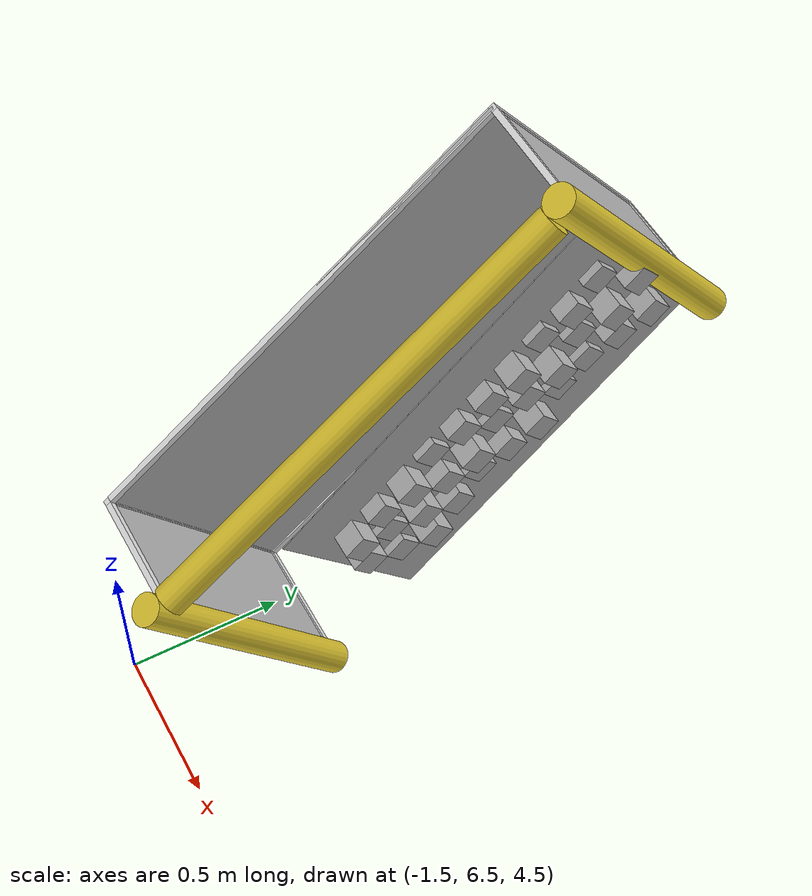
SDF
<sdf version="1.4">
 <world name="default">
  <model name="ground_plane">
   <static>1</static>
   <link name="link">
    <collision name="collision">
     <geometry><plane><normal>0 0 1</normal><size>100 100</size></plane></geometry>
     <surface><friction><ode><mu>100</mu><mu2>50</mu2></ode></friction></surface>
    </collision>
    <visual name="visual">
     <cast_shadows>0</cast_shadows>
     <geometry><plane><normal>0 0 1</normal><size>100 100</size></plane></geometry>
     <material>
      <script><uri>file://media/materials/scripts/gazebo.material</uri><name>Gazebo/Grey</name></script>
     </material>
    </visual>
    <velocity_decay><linear>0</linear><angular>0</angular></velocity_decay>
   </link>
  </model>
  <model name="RoboCup 2014 SPL Goal">
   <static>1</static>
   <link name="left_post">
    <pose>0 0.8 0.45 0 -0 0</pose>
    <collision name="collision">
     <geometry><cylinder><radius>0.05</radius><length>0.9</length></cylinder></geometry>
    </collision>
    <visual name="visual">
     <geometry><cylinder><radius>0.05</radius><length>0.9</length></cylinder></geometry>
     <material>
      <script><uri>file://media/materials/scripts/gazebo.material</uri><name>Gazebo/ZincYellow</name></script>
     </material>
    </visual>
    <velocity_decay><linear>0</linear><angular>0</angular></velocity_decay>
   </link>
   <link name="left_support_horiz_lower">
    <pose>0.24 0.8 0.01 0 -0 0</pose>
    <collision name="collision"><geometry><box><size>0.38 0.02 0.02</size></box></geometry></collision>
    <visual name="visual">
     <geometry><box><size>0.38 0.02 0.02</size></box></geometry>
     <material>
      <script><uri>file://media/materials/scripts/gazebo.material</uri><name>Gazebo/White</name></script>
     </material>
    </visual>
    <velocity_decay><linear>0</linear><angular>0</angular></velocity_decay>
   </link>
   <link name="left_support_horiz_upper">
    <pose>0.24 0.8 0.79 0 -0 0</pose>
    <collision name="collision"><geometry><box><size>0.38 0.02 0.02</size></box></geometry></collision>
    <visual name="visual">
     <geometry><box><size>0.38 0.02 0.02</size></box></geometry>
     <material>
      <script><uri>file://media/materials/scripts/gazebo.material</uri><name>Gazebo/White</name></script>
     </material>
    </visual>
    <velocity_decay><linear>0</linear><angular>0</angular></velocity_decay>
   </link>
   <link name="left_support_vertical">
    <pose>0.44 0.8 0.4 3.14159 1.57079 3.14159</pose>
    <collision name="collision"><geometry><box><size>0.8 0.02 0.02</size></box></geometry></collision>
    <visual name="visual">
     <geometry><box><size>0.8 0.02 0.02</size></box></geometry>
     <material>
      <script><uri>file://media/materials/scripts/gazebo.material</uri><name>Gazebo/White</name></script>
     </material>
    </visual>
    <velocity_decay><linear>0</linear><angular>0</angular></velocity_decay>
   </link>
   <link name="right_support_horiz_lower">
    <pose>0.24 -0.8 0.01 0 -0 0</pose>
    <collision name="collision"><geometry><box><size>0.38 0.02 0.02</size></box></geometry></collision>
    <visual name="visual">
     <geometry><box><size>0.38 0.02 0.02</size></box></geometry>
     <material>
      <script><uri>file://media/materials/scripts/gazebo.material</uri><name>Gazebo/White</name></script>
     </material>
    </visual>
    <velocity_decay><linear>0</linear><angular>0</angular></velocity_decay>
   </link>
   <link name="right_support_horiz_upper">
    <pose>0.24 -0.8 0.79 0 -0 0</pose>
    <collision name="collision"><geometry><box><size>0.38 0.02 0.02</size></box></geometry></collision>
    <visual name="visual">
     <geometry><box><size>0.38 0.02 0.02</size></box></geometry>
     <material>
      <script><uri>file://media/materials/scripts/gazebo.material</uri><name>Gazebo/White</name></script>
     </material>
    </visual>
    <velocity_decay><linear>0</linear><angular>0</angular></velocity_decay>
   </link>
   <link name="right_support_vertical">
    <pose>0.44 -0.8 0.4 3.14159 1.57079 3.14159</pose>
    <collision name="collision"><geometry><box><size>0.8 0.02 0.02</size></box></geometry></collision>
    <visual name="visual">
     <geometry><box><size>0.8 0.02 0.02</size></box></geometry>
     <material>
      <script><uri>file://media/materials/scripts/gazebo.material</uri><name>Gazebo/White</name></script>
     </material>
    </visual>
    <velocity_decay><linear>0</linear><angular>0</angular></velocity_decay>
   </link>
   <link name="center_support_horiz_lower">
    <pose>0.44 0 0.01 3.14159 1.57079 3.14159</pose>
    <collision name="collision"><geometry><box><size>0.02 1.58 0.02</size></box></geometry></collision>
    <visual name="visual">
     <geometry><box><size>0.02 1.58 0.02</size></box></geometry>
     <material>
      <script><uri>file://media/materials/scripts/gazebo.material</uri><name>Gazebo/White</name></script>
     </material>
    </visual>
    <velocity_decay><linear>0</linear><angular>0</angular></velocity_decay>
   </link>
   <link name="center_support_horiz_upper">
    <pose>0.44 0 0.79 3.14159 1.57079 3.14159</pose>
    <collision name="collision"><geometry><box><size>0.02 1.58 0.02</size></box></geometry></collision>
    <visual name="visual">
     <geometry><box><size>0.02 1.58 0.02</size></box></geometry>
     <material>
      <script><uri>file://media/materials/scripts/gazebo.material</uri><name>Gazebo/White</name></script>
     </material>
    </visual>
    <velocity_decay><linear>0</linear><angular>0</angular></velocity_decay>
   </link>
   <link name="right_post">
    <pose>0 -0.8 0.45 0 -0 0</pose>
    <collision name="collision">
     <geometry><cylinder><radius>0.05</radius><length>0.9</length></cylinder></geometry>
    </collision>
    <visual name="visual">
     <geometry><cylinder><radius>0.05</radius><length>0.9</length></cylinder></geometry>
     <material>
      <script><uri>file://media/materials/scripts/gazebo.material</uri><name>Gazebo/ZincYellow</name></script>
     </material>
    </visual>
    <velocity_decay><linear>0</linear><angular>0</angular></velocity_decay>
   </link>
   <link name="crossbar">
    <pose>0 0 0.85 1.57 1.57 1.39418e-13</pose>
    <collision name="collision">
     <geometry><cylinder><radius>0.05</radius><length>1.5</length></cylinder></geometry>
    </collision>
    <visual name="visual">
     <geometry><cylinder><radius>0.05</radius><length>1.5</length></cylinder></geometry>
     <material>
      <script><uri>file://media/materials/scripts/gazebo.material</uri><name>Gazebo/ZincYellow</name></script>
     </material>
    </visual>
    <velocity_decay><linear>0</linear><angular>0</angular></velocity_decay>
   </link>
   <link name="center_net">
    <pose>0.44 0 0.4 0 -0 0</pose>
    <collision name="collision"><geometry><box><size>0.01 1.6 0.8</size></box></geometry></collision>
    <visual name="visual">
     <geometry><box><size>0.01 1.6 0.8</size></box></geometry>
     <material>
      <script>
       <uri>model://robocup09_spl_field/materials/scripts/</uri>
       <uri>model://robocup09_spl_field/materials/textures/</uri>
       <name>RoboCup/Net</name>
      </script>
     </material>
    </visual>
    <velocity_decay><linear>0</linear><angular>0</angular></velocity_decay>
   </link>
   <link name="left_net">
    <pose>0.24 0.8 0.4 0 -0 0</pose>
    <collision name="collision"><geometry><box><size>0.38 0.01 0.76</size></box></geometry></collision>
    <visual name="visual">
     <geometry><box><size>0.38 0.01 0.76</size></box></geometry>
     <material>
      <script>
       <uri>model://robocup09_spl_field/materials/scripts/</uri>
       <uri>model://robocup09_spl_field/materials/textures/</uri>
       <name>RoboCup/Net</name>
      </script>
     </material>
    </visual>
    <velocity_decay><linear>0</linear><angular>0</angular></velocity_decay>
   </link>
   <link name="right_net">
    <pose>0.24 -0.8 0.4 0 -0 0</pose>
    <collision name="collision"><geometry><box><size>0.38 0.01 0.76</size></box></geometry></collision>
    <visual name="visual">
     <geometry><box><size>0.38 0.01 0.76</size></box></geometry>
     <material>
      <script>
       <uri>model://robocup09_spl_field/materials/scripts/</uri>
       <uri>model://robocup09_spl_field/materials/textures/</uri>
       <name>RoboCup/Net</name>
      </script>
     </material>
    </visual>
    <velocity_decay><linear>0</linear><angular>0</angular></velocity_decay>
   </link>
   <pose>-1.13047 7.66674 5.17034 -0.669104 -2.1684e-19 -3.13944</pose>
  </model>
  <model name="frc2016_roughterrain_5">
   <static>1</static>
   <link name="link">
    <visual name="platform">
     <pose>0 0 0.08269 0 -0 0</pose>
     <geometry><box><size>1.27 0.5969 0.003175</size></box></geometry>
    </visual>
    <collision name="platform">
     <pose>0 0 0.08269 0 -0 0</pose>
     <geometry><box><size>1.27 0.5969 0.003175</size></box></geometry>
    </collision>
    <visual name="row1_block1_sm">
     <pose>0.51435 0.1143 0.09698 0 -0 0</pose>
     <geometry><box><size>0.0762 0.0762 0.0254</size></box></geometry>
    </visual>
    <collision name="row1_block1_sm">
     <pose>0.51435 0.1143 0.09698 0 -0 0</pose>
     <geometry><box><size>0.0762 0.0762 0.0254</size></box></geometry>
    </collision>
    <visual name="row1_block2_lg">
     <pose>0.40005 0.1143 0.12238 0 -0 0</pose>
     <geometry><box><size>0.0762 0.0762 0.0762</size></box></geometry>
    </visual>
    <collision name="row1_block2_lg">
     <pose>0.40005 0.1143 0.12238 0 -0 0</pose>
     <geometry><box><size>0.0762 0.0762 0.0762</size></box></geometry>
    </collision>
    <visual name="row1_block3_md">
     <pose>0.28575 0.1143 0.10968 0 -0 0</pose>
     <geometry><box><size>0.0762 0.0762 0.0508</size></box></geometry>
    </visual>
    <collision name="row1_block3_md">
     <pose>0.28575 0.1143 0.10968 0 -0 0</pose>
     <geometry><box><size>0.0762 0.0762 0.0508</size></box></geometry>
    </collision>
    <visual name="row1_block4_sm">
     <pose>0.17145 0.1143 0.09698 0 -0 0</pose>
     <geometry><box><size>0.0762 0.0762 0.0254</size></box></geometry>
    </visual>
    <collision name="row1_block4_sm">
     <pose>0.17145 0.1143 0.09698 0 -0 0</pose>
     <geometry><box><size>0.0762 0.0762 0.0254</size></box></geometry>
    </collision>
    <visual name="row1_block5_md">
     <pose>0.05715 0.1143 0.10968 0 -0 0</pose>
     <geometry><box><size>0.0762 0.0762 0.0508</size></box></geometry>
    </visual>
    <collision name="row1_block5_md">
     <pose>0.05715 0.1143 0.10968 0 -0 0</pose>
     <geometry><box><size>0.0762 0.0762 0.0508</size></box></geometry>
    </collision>
    <visual name="row1_block6_lg">
     <pose>-0.05715 0.1143 0.12238 0 -0 0</pose>
     <geometry><box><size>0.0762 0.0762 0.0762</size></box></geometry>
    </visual>
    <collision name="row1_block6_lg">
     <pose>-0.05715 0.1143 0.12238 0 -0 0</pose>
     <geometry><box><size>0.0762 0.0762 0.0762</size></box></geometry>
    </collision>
    <visual name="row1_block7_sm">
     <pose>-0.17145 0.1143 0.09698 0 -0 0</pose>
     <geometry><box><size>0.0762 0.0762 0.0254</size></box></geometry>
    </visual>
    <collision name="row1_block7_sm">
     <pose>-0.17145 0.1143 0.09698 0 -0 0</pose>
     <geometry><box><size>0.0762 0.0762 0.0254</size></box></geometry>
    </collision>
    <visual name="row1_block8_sm">
     <pose>-0.28575 0.1143 0.09698 0 -0 0</pose>
     <geometry><box><size>0.0762 0.0762 0.0254</size></box></geometry>
    </visual>
    <collision name="row1_block8_sm">
     <pose>-0.28575 0.1143 0.09698 0 -0 0</pose>
     <geometry><box><size>0.0762 0.0762 0.0254</size></box></geometry>
    </collision>
    <visual name="row1_block9_md">
     <pose>-0.40005 0.1143 0.10968 0 -0 0</pose>
     <geometry><box><size>0.0762 0.0762 0.0508</size></box></geometry>
    </visual>
    <collision name="row1_block9_md">
     <pose>-0.40005 0.1143 0.10968 0 -0 0</pose>
     <geometry><box><size>0.0762 0.0762 0.0508</size></box></geometry>
    </collision>
    <visual name="row1_block10_lg">
     <pose>-0.51435 0.1143 0.12238 0 -0 0</pose>
     <geometry><box><size>0.0762 0.0762 0.0762</size></box></geometry>
    </visual>
    <collision name="row1_block10_lg">
     <pose>-0.51435 0.1143 0.12238 0 -0 0</pose>
     <geometry><box><size>0.0762 0.0762 0.0762</size></box></geometry>
    </collision>
    <visual name="row2_block1_md">
     <pose>0.5715 0 0.10968 0 -0 0</pose>
     <geometry><box><size>0.0762 0.0762 0.0508</size></box></geometry>
    </visual>
    <collision name="row2_block1_md">
     <pose>0.5715 0 0.10968 0 -0 0</pose>
     <geometry><box><size>0.0762 0.0762 0.0508</size></box></geometry>
    </collision>
    <visual name="row2_block2_sm">
     <pose>0.4572 0 0.09698 0 -0 0</pose>
     <geometry><box><size>0.0762 0.0762 0.0254</size></box></geometry>
    </visual>
    <collision name="row2_block2_sm">
     <pose>0.4572 0 0.09698 0 -0 0</pose>
     <geometry><box><size>0.0762 0.0762 0.0254</size></box></geometry>
    </collision>
    <visual name="row2_block3_lg">
     <pose>0.3429 0 0.12238 0 -0 0</pose>
     <geometry><box><size>0.0762 0.0762 0.0762</size></box></geometry>
    </visual>
    <collision name="row2_block3_lg">
     <pose>0.3429 0 0.12238 0 -0 0</pose>
     <geometry><box><size>0.0762 0.0762 0.0762</size></box></geometry>
    </collision>
    <visual name="row2_block4_md">
     <pose>0.2286 0 0.10968 0 -0 0</pose>
     <geometry><box><size>0.0762 0.0762 0.0508</size></box></geometry>
    </visual>
    <collision name="row2_block4_md">
     <pose>0.2286 0 0.10968 0 -0 0</pose>
     <geometry><box><size>0.0762 0.0762 0.0508</size></box></geometry>
    </collision>
    <visual name="row2_block5_lg">
     <pose>0.1143 0 0.12238 0 -0 0</pose>
     <geometry><box><size>0.0762 0.0762 0.0762</size></box></geometry>
    </visual>
    <collision name="row2_block5_lg">
     <pose>0.1143 0 0.12238 0 -0 0</pose>
     <geometry><box><size>0.0762 0.0762 0.0762</size></box></geometry>
    </collision>
    <visual name="row2_block6_sm">
     <pose>0 0 0.09698 0 -0 0</pose>
     <geometry><box><size>0.0762 0.0762 0.0254</size></box></geometry>
    </visual>
    <collision name="row2_block6_sm">
     <pose>0 0 0.09698 0 -0 0</pose>
     <geometry><box><size>0.0762 0.0762 0.0254</size></box></geometry>
    </collision>
    <visual name="row2_block7_md">
     <pose>-0.1143 0 0.10968 0 -0 0</pose>
     <geometry><box><size>0.0762 0.0762 0.0508</size></box></geometry>
    </visual>
    <collision name="row2_block7_md">
     <pose>-0.1143 0 0.10968 0 -0 0</pose>
     <geometry><box><size>0.0762 0.0762 0.0508</size></box></geometry>
    </collision>
    <visual name="row2_block8_lg">
     <pose>-0.2286 0 0.12238 0 -0 0</pose>
     <geometry><box><size>0.0762 0.0762 0.0762</size></box></geometry>
    </visual>
    <collision name="row2_block8_lg">
     <pose>-0.2286 0 0.12238 0 -0 0</pose>
     <geometry><box><size>0.0762 0.0762 0.0762</size></box></geometry>
    </collision>
    <visual name="row2_block9_sm">
     <pose>-0.3429 0 0.09698 0 -0 0</pose>
     <geometry><box><size>0.0762 0.0762 0.0254</size></box></geometry>
    </visual>
    <collision name="row2_block9_sm">
     <pose>-0.3429 0 0.09698 0 -0 0</pose>
     <geometry><box><size>0.0762 0.0762 0.0254</size></box></geometry>
    </collision>
    <visual name="row2_block10_lg">
     <pose>-0.4572 0 0.12238 0 -0 0</pose>
     <geometry><box><size>0.0762 0.0762 0.0762</size></box></geometry>
    </visual>
    <collision name="row2_block10_lg">
     <pose>-0.4572 0 0.12238 0 -0 0</pose>
     <geometry><box><size>0.0762 0.0762 0.0762</size></box></geometry>
    </collision>
    <visual name="row2_block11_md">
     <pose>-0.5715 0 0.10968 0 -0 0</pose>
     <geometry><box><size>0.0762 0.0762 0.0508</size></box></geometry>
    </visual>
    <collision name="row2_block11_md">
     <pose>-0.5715 0 0.10968 0 -0 0</pose>
     <geometry><box><size>0.0762 0.0762 0.0508</size></box></geometry>
    </collision>
    <visual name="row3_block1_lg">
     <pose>0.51435 -0.1143 0.12238 0 -0 0</pose>
     <geometry><box><size>0.0762 0.0762 0.0762</size></box></geometry>
    </visual>
    <collision name="row3_block1_lg">
     <pose>0.51435 -0.1143 0.12238 0 -0 0</pose>
     <geometry><box><size>0.0762 0.0762 0.0762</size></box></geometry>
    </collision>
    <visual name="row3_block2_md">
     <pose>0.40005 -0.1143 0.10968 0 -0 0</pose>
     <geometry><box><size>0.0762 0.0762 0.0508</size></box></geometry>
    </visual>
    <collision name="row3_block2_md">
     <pose>0.40005 -0.1143 0.10968 0 -0 0</pose>
     <geometry><box><size>0.0762 0.0762 0.0508</size></box></geometry>
    </collision>
    <visual name="row3_block3_lg">
     <pose>0.28575 -0.1143 0.12238 0 -0 0</pose>
     <geometry><box><size>0.0762 0.0762 0.0762</size></box></geometry>
    </visual>
    <collision name="row3_block3_lg">
     <pose>0.28575 -0.1143 0.12238 0 -0 0</pose>
     <geometry><box><size>0.0762 0.0762 0.0762</size></box></geometry>
    </collision>
    <visual name="row3_block4_sm">
     <pose>0.17145 -0.1143 0.09698 0 -0 0</pose>
     <geometry><box><size>0.0762 0.0762 0.0254</size></box></geometry>
    </visual>
    <collision name="row3_block4_sm">
     <pose>0.17145 -0.1143 0.09698 0 -0 0</pose>
     <geometry><box><size>0.0762 0.0762 0.0254</size></box></geometry>
    </collision>
    <visual name="row3_block5_md">
     <pose>0.05715 -0.1143 0.10968 0 -0 0</pose>
     <geometry><box><size>0.0762 0.0762 0.0508</size></box></geometry>
    </visual>
    <collision name="row3_block5_md">
     <pose>0.05715 -0.1143 0.10968 0 -0 0</pose>
     <geometry><box><size>0.0762 0.0762 0.0508</size></box></geometry>
    </collision>
    <visual name="row3_block6_md">
     <pose>-0.05715 -0.1143 0.10968 0 -0 0</pose>
     <geometry><box><size>0.0762 0.0762 0.0508</size></box></geometry>
    </visual>
    <collision name="row3_block6_md">
     <pose>-0.05715 -0.1143 0.10968 0 -0 0</pose>
     <geometry><box><size>0.0762 0.0762 0.0508</size></box></geometry>
    </collision>
    <visual name="row3_block7_lg">
     <pose>-0.17145 -0.1143 0.12238 0 -0 0</pose>
     <geometry><box><size>0.0762 0.0762 0.0762</size></box></geometry>
    </visual>
    <collision name="row3_block7_lg">
     <pose>-0.17145 -0.1143 0.12238 0 -0 0</pose>
     <geometry><box><size>0.0762 0.0762 0.0762</size></box></geometry>
    </collision>
    <visual name="row3_block8_sm">
     <pose>-0.28575 -0.1143 0.09698 0 -0 0</pose>
     <geometry><box><size>0.0762 0.0762 0.0254</size></box></geometry>
    </visual>
    <collision name="row3_block8_sm">
     <pose>-0.28575 -0.1143 0.09698 0 -0 0</pose>
     <geometry><box><size>0.0762 0.0762 0.0254</size></box></geometry>
    </collision>
    <visual name="row3_block9_md">
     <pose>-0.40005 -0.1143 0.10968 0 -0 0</pose>
     <geometry><box><size>0.0762 0.0762 0.0508</size></box></geometry>
    </visual>
    <collision name="row3_block9_md">
     <pose>-0.40005 -0.1143 0.10968 0 -0 0</pose>
     <geometry><box><size>0.0762 0.0762 0.0508</size></box></geometry>
    </collision>
    <visual name="row3_block10_sm">
     <pose>-0.51435 -0.1143 0.09698 0 -0 0</pose>
     <geometry><box><size>0.0762 0.0762 0.0254</size></box></geometry>
    </visual>
    <collision name="row3_block10_sm">
     <pose>-0.51435 -0.1143 0.09698 0 -0 0</pose>
     <geometry><box><size>0.0762 0.0762 0.0254</size></box></geometry>
    </collision>
    <velocity_decay><linear>0</linear><angular>0</angular></velocity_decay>
   </link>
   <pose>-1.21088 7.57184 5.58733 -1.55182 0.736874 -1.56197</pose>
  </model>
 </world>
</sdf>
